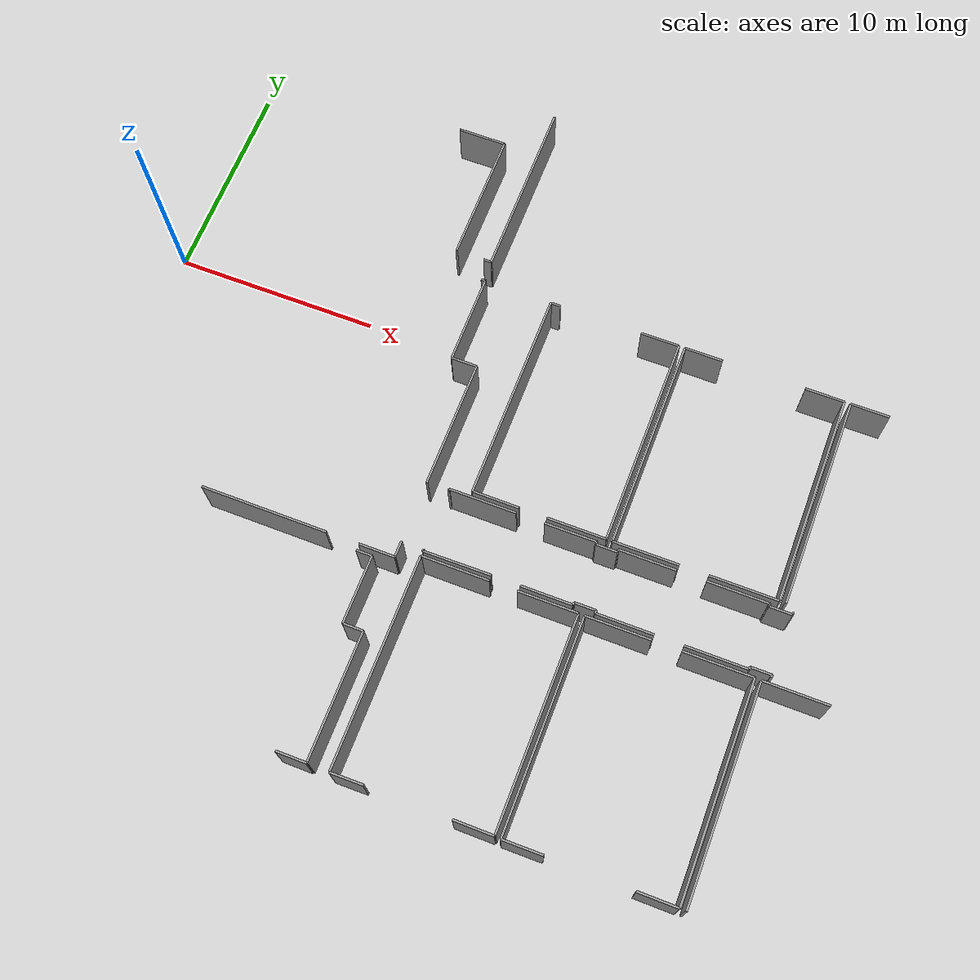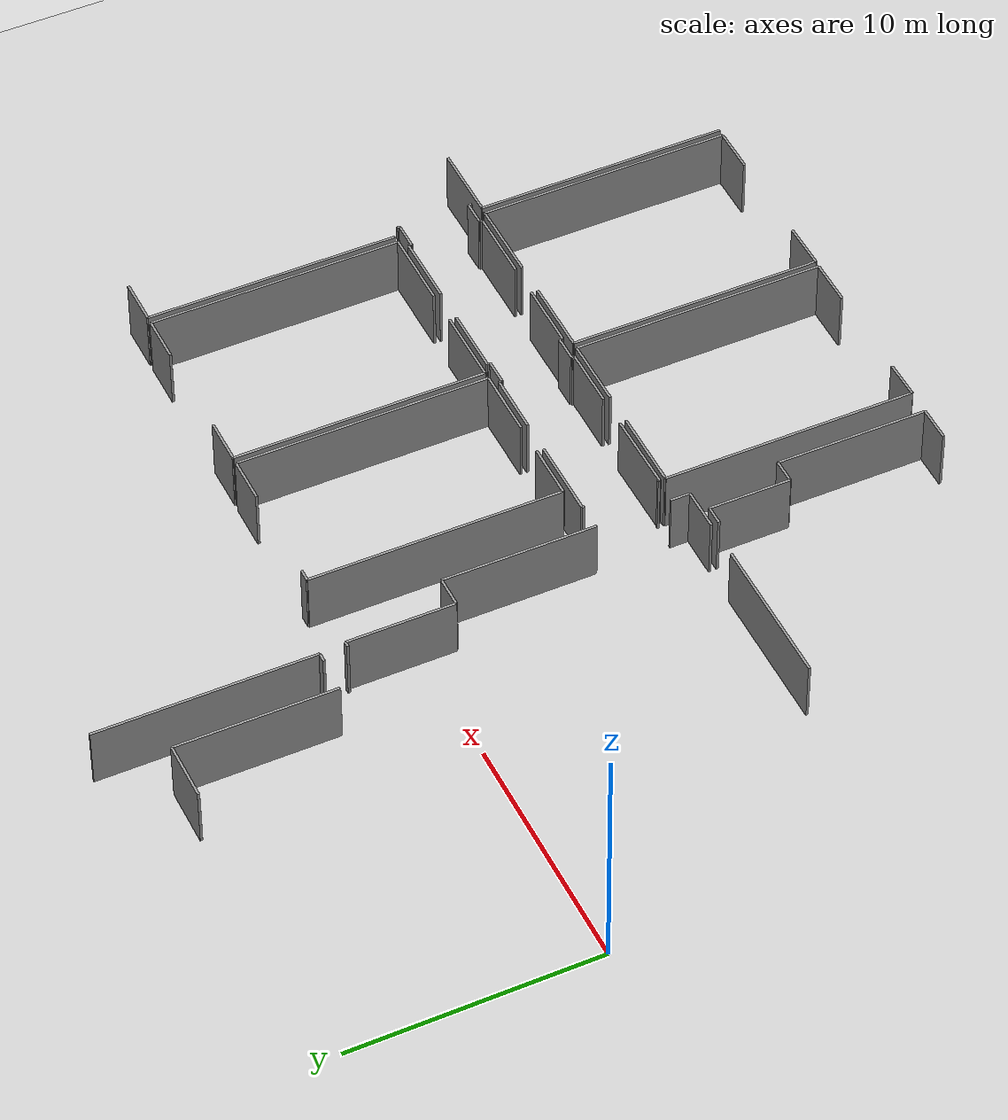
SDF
<sdf version="1.6">
 <world name="default">
  <model name="ground_plane">
   <static>1</static>
   <link name="link">
    <collision name="collision">
     <geometry><plane><normal>0 0 1</normal><size>100 100</size></plane></geometry>
     <surface><friction><ode><mu>100</mu><mu2>50</mu2></ode></friction></surface>
    </collision>
    <visual name="visual">
     <cast_shadows>0</cast_shadows>
     <geometry><plane><normal>0 0 1</normal><size>100 100</size></plane></geometry>
     <material>
      <script><uri>file://media/materials/scripts/gazebo.material</uri><name>Gazebo/Grey</name></script>
     </material>
    </visual>
   </link>
  </model>
  <model name="50057025">
   <static>1</static>
   <link name="Wall_98">
    <collision name="Wall_98_Collision">
     <geometry><box><size>0.759958303621 0.1 2.5</size></box></geometry>
     <pose>0.379979151811 0 1.25 0 0 0</pose>
    </collision>
    <visual name="Wall_98_Visual">
     <pose>0.379979151811 0 1.25 0 0 0</pose>
     <geometry><box><size>0.759958303621 0.1 2.5</size></box></geometry>
     <material>
      <script><uri>file://media/materials/scripts/gazebo.material</uri><name>Gazebo/Grey</name></script>
      <ambient>1 1 1 1</ambient>
     </material>
    </visual>
    <pose>70.1694833677 -32.3245731251 0 0 0 0.0</pose>
   </link>
   <link name="Wall_99">
    <collision name="Wall_99_Collision">
     <geometry><box><size>3.28504642712 0.1 2.5</size></box></geometry>
     <pose>1.64252321356 0 1.25 0 0 0</pose>
    </collision>
    <visual name="Wall_99_Visual">
     <pose>1.64252321356 0 1.25 0 0 0</pose>
     <geometry><box><size>3.28504642712 0.1 2.5</size></box></geometry>
     <material>
      <script><uri>file://media/materials/scripts/gazebo.material</uri><name>Gazebo/Grey</name></script>
      <ambient>1 1 1 1</ambient>
     </material>
    </visual>
    <pose>70.9294416713 -32.3245731251 0 0 0 -1.57079632679</pose>
   </link>
   <link name="Wall_100">
    <collision name="Wall_100_Collision">
     <geometry><box><size>0.97160669118 0.1 2.5</size></box></geometry>
     <pose>0.48580334559 0 1.25 0 0 0</pose>
    </collision>
    <visual name="Wall_100_Visual">
     <pose>0.48580334559 0 1.25 0 0 0</pose>
     <geometry><box><size>0.97160669118 0.1 2.5</size></box></geometry>
     <material>
      <script><uri>file://media/materials/scripts/gazebo.material</uri><name>Gazebo/Grey</name></script>
      <ambient>1 1 1 1</ambient>
     </material>
    </visual>
    <pose>70.9294416713 -35.6096195522 0 0 0 0.0</pose>
   </link>
   <link name="Wall_101">
    <collision name="Wall_101_Collision">
     <geometry><box><size>6.09119246324 0.1 2.5</size></box></geometry>
     <pose>3.04559623162 0 1.25 0 0 0</pose>
    </collision>
    <visual name="Wall_101_Visual">
     <pose>3.04559623162 0 1.25 0 0 0</pose>
     <geometry><box><size>6.09119246324 0.1 2.5</size></box></geometry>
     <material>
      <script><uri>file://media/materials/scripts/gazebo.material</uri><name>Gazebo/Grey</name></script>
      <ambient>1 1 1 1</ambient>
     </material>
    </visual>
    <pose>71.9010483625 -35.6096195522 0 0 0 -1.57079632679</pose>
   </link>
   <link name="Wall_102">
    <collision name="Wall_102_Collision">
     <geometry><box><size>1.44620065179 0.1 2.5</size></box></geometry>
     <pose>0.723100325895 0 1.25 0 0 0</pose>
    </collision>
    <visual name="Wall_102_Visual">
     <pose>0.723100325895 0 1.25 0 0 0</pose>
     <geometry><box><size>1.44620065179 0.1 2.5</size></box></geometry>
     <material>
      <script><uri>file://media/materials/scripts/gazebo.material</uri><name>Gazebo/Grey</name></script>
      <ambient>1 1 1 1</ambient>
     </material>
    </visual>
    <pose>71.9010483625 -41.7008120154 0 0 0 3.14159265359</pose>
   </link>
   <link name="Wall_104">
    <collision name="Wall_104_Collision">
     <geometry><box><size>10.1669755053 0.1 2.5</size></box></geometry>
     <pose>5.08348775264 0 1.25 0 0 0</pose>
    </collision>
    <visual name="Wall_104_Visual">
     <pose>5.08348775264 0 1.25 0 0 0</pose>
     <geometry><box><size>10.1669755053 0.1 2.5</size></box></geometry>
     <material>
      <script><uri>file://media/materials/scripts/gazebo.material</uri><name>Gazebo/Grey</name></script>
      <ambient>1 1 1 1</ambient>
     </material>
    </visual>
    <pose>72.9473842868 -41.7166444801 0 0 0 1.57079632679</pose>
   </link>
   <link name="Wall_105">
    <collision name="Wall_105_Collision">
     <geometry><box><size>3.26212101829 0.1 2.5</size></box></geometry>
     <pose>1.63106050915 0 1.25 0 0 0</pose>
    </collision>
    <visual name="Wall_105_Visual">
     <pose>1.63106050915 0 1.25 0 0 0</pose>
     <geometry><box><size>3.26212101829 0.1 2.5</size></box></geometry>
     <material>
      <script><uri>file://media/materials/scripts/gazebo.material</uri><name>Gazebo/Grey</name></script>
      <ambient>1 1 1 1</ambient>
     </material>
    </visual>
    <pose>72.9473842868 -31.5496689748 0 0 0 0.0</pose>
   </link>
   <link name="Wall_106">
    <collision name="Wall_106_Collision">
     <geometry><box><size>2.85491002727 0.1 2.5</size></box></geometry>
     <pose>1.42745501363 0 1.25 0 0 0</pose>
    </collision>
    <visual name="Wall_106_Visual">
     <pose>1.42745501363 0 1.25 0 0 0</pose>
     <geometry><box><size>2.85491002727 0.1 2.5</size></box></geometry>
     <material>
      <script><uri>file://media/materials/scripts/gazebo.material</uri><name>Gazebo/Grey</name></script>
      <ambient>1 1 1 1</ambient>
     </material>
    </visual>
    <pose>77.5210666775 -31.5496689748 0 0 0 0.0</pose>
   </link>
   <link name="Wall_107">
    <collision name="Wall_107_Collision">
     <geometry><box><size>10.1501297629 0.1 2.5</size></box></geometry>
     <pose>5.07506488144 0 1.25 0 0 0</pose>
    </collision>
    <visual name="Wall_107_Visual">
     <pose>5.07506488144 0 1.25 0 0 0</pose>
     <geometry><box><size>10.1501297629 0.1 2.5</size></box></geometry>
     <material>
      <script><uri>file://media/materials/scripts/gazebo.material</uri><name>Gazebo/Grey</name></script>
      <ambient>1 1 1 1</ambient>
     </material>
    </visual>
    <pose>80.3759767047 -31.5496689748 0 0 0 -1.57079632679</pose>
   </link>
   <link name="Wall_108">
    <collision name="Wall_108_Collision">
     <geometry><box><size>1.88469659298 0.1 2.5</size></box></geometry>
     <pose>0.94234829649 0 1.25 0 0 0</pose>
    </collision>
    <visual name="Wall_108_Visual">
     <pose>0.94234829649 0 1.25 0 0 0</pose>
     <geometry><box><size>1.88469659298 0.1 2.5</size></box></geometry>
     <material>
      <script><uri>file://media/materials/scripts/gazebo.material</uri><name>Gazebo/Grey</name></script>
      <ambient>1 1 1 1</ambient>
     </material>
    </visual>
    <pose>80.3759767047 -41.6997987377 0 0 0 3.14159265359</pose>
   </link>
   <link name="Wall_109">
    <collision name="Wall_109_Collision">
     <geometry><box><size>1.53964102371 0.1 2.5</size></box></geometry>
     <pose>0.769820511855 0 1.25 0 0 0</pose>
    </collision>
    <visual name="Wall_109_Visual">
     <pose>0.769820511855 0 1.25 0 0 0</pose>
     <geometry><box><size>1.53964102371 0.1 2.5</size></box></geometry>
     <material>
      <script><uri>file://media/materials/scripts/gazebo.material</uri><name>Gazebo/Grey</name></script>
      <ambient>1 1 1 1</ambient>
     </material>
    </visual>
    <pose>74.4869331503 -41.6997987377 0 0 0 -3.13065109107</pose>
   </link>
   <link name="Wall_110">
    <collision name="Wall_110_Collision">
     <geometry><box><size>10.1669755053 0.1 2.5</size></box></geometry>
     <pose>5.08348775264 0 1.25 0 0 0</pose>
    </collision>
    <visual name="Wall_110_Visual">
     <pose>5.08348775264 0 1.25 0 0 0</pose>
     <geometry><box><size>10.1669755053 0.1 2.5</size></box></geometry>
     <material>
      <script><uri>file://media/materials/scripts/gazebo.material</uri><name>Gazebo/Grey</name></script>
      <ambient>1 1 1 1</ambient>
     </material>
    </visual>
    <pose>80.6552613813 -41.7248773617 0 0 0 1.57079632679</pose>
   </link>
   <link name="Wall_111">
    <collision name="Wall_111_Collision">
     <geometry><box><size>3.09429689291 0.1 2.5</size></box></geometry>
     <pose>1.54714844646 0 1.25 0 0 0</pose>
    </collision>
    <visual name="Wall_111_Visual">
     <pose>1.54714844646 0 1.25 0 0 0</pose>
     <geometry><box><size>3.09429689291 0.1 2.5</size></box></geometry>
     <material>
      <script><uri>file://media/materials/scripts/gazebo.material</uri><name>Gazebo/Grey</name></script>
      <ambient>1 1 1 1</ambient>
     </material>
    </visual>
    <pose>80.6552613813 -31.5579018565 0 0 0 0.0</pose>
   </link>
   <link name="Wall_112">
    <collision name="Wall_112_Collision">
     <geometry><box><size>3.30417204443 0.1 2.5</size></box></geometry>
     <pose>1.65208602221 0 1.25 0 0 0</pose>
    </collision>
    <visual name="Wall_112_Visual">
     <pose>1.65208602221 0 1.25 0 0 0</pose>
     <geometry><box><size>3.30417204443 0.1 2.5</size></box></geometry>
     <material>
      <script><uri>file://media/materials/scripts/gazebo.material</uri><name>Gazebo/Grey</name></script>
      <ambient>1 1 1 1</ambient>
     </material>
    </visual>
    <pose>85.1273626787 -31.5579018565 0 0 0 0.0</pose>
   </link>
   <link name="Wall_113">
    <collision name="Wall_113_Collision">
     <geometry><box><size>10.1524096378 0.1 2.5</size></box></geometry>
     <pose>5.0762048189 0 1.25 0 0 0</pose>
    </collision>
    <visual name="Wall_113_Visual">
     <pose>5.0762048189 0 1.25 0 0 0</pose>
     <geometry><box><size>10.1524096378 0.1 2.5</size></box></geometry>
     <material>
      <script><uri>file://media/materials/scripts/gazebo.material</uri><name>Gazebo/Grey</name></script>
      <ambient>1 1 1 1</ambient>
     </material>
    </visual>
    <pose>88.4315347231 -31.5579018565 0 0 0 -1.57079632679</pose>
   </link>
   <link name="Wall_114">
    <collision name="Wall_114_Collision">
     <geometry><box><size>1.86759753115 0.1 2.5</size></box></geometry>
     <pose>0.933798765574 0 1.25 0 0 0</pose>
    </collision>
    <visual name="Wall_114_Visual">
     <pose>0.933798765574 0 1.25 0 0 0</pose>
     <geometry><box><size>1.86759753115 0.1 2.5</size></box></geometry>
     <material>
      <script><uri>file://media/materials/scripts/gazebo.material</uri><name>Gazebo/Grey</name></script>
      <ambient>1 1 1 1</ambient>
     </material>
    </visual>
    <pose>88.4315347231 -41.7103114942 0 0 0 3.14159265359</pose>
   </link>
   <link name="Wall_115">
    <collision name="Wall_115_Collision">
     <geometry><box><size>1.88627274951 0.1 2.5</size></box></geometry>
     <pose>0.943136374754 0 1.25 0 0 0</pose>
    </collision>
    <visual name="Wall_115_Visual">
     <pose>0.943136374754 0 1.25 0 0 0</pose>
     <geometry><box><size>1.88627274951 0.1 2.5</size></box></geometry>
     <material>
      <script><uri>file://media/materials/scripts/gazebo.material</uri><name>Gazebo/Grey</name></script>
      <ambient>1 1 1 1</ambient>
     </material>
    </visual>
    <pose>82.5414778909 -41.7103114942 0 0 0 -3.1338705401</pose>
   </link>
   <link name="Wall_116">
    <collision name="Wall_116_Collision">
     <geometry><box><size>10.1530429364 0.1 2.5</size></box></geometry>
     <pose>5.07652146819 0 1.25 0 0 0</pose>
    </collision>
    <visual name="Wall_116_Visual">
     <pose>5.07652146819 0 1.25 0 0 0</pose>
     <geometry><box><size>10.1530429364 0.1 2.5</size></box></geometry>
     <material>
      <script><uri>file://media/materials/scripts/gazebo.material</uri><name>Gazebo/Grey</name></script>
      <ambient>1 1 1 1</ambient>
     </material>
    </visual>
    <pose>88.7222187743 -41.7312103476 0 0 0 1.57079632679</pose>
   </link>
   <link name="Wall_117">
    <collision name="Wall_117_Collision">
     <geometry><box><size>3.10531628831 0.1 2.5</size></box></geometry>
     <pose>1.55265814416 0 1.25 0 0 0</pose>
    </collision>
    <visual name="Wall_117_Visual">
     <pose>1.55265814416 0 1.25 0 0 0</pose>
     <geometry><box><size>3.10531628831 0.1 2.5</size></box></geometry>
     <material>
      <script><uri>file://media/materials/scripts/gazebo.material</uri><name>Gazebo/Grey</name></script>
      <ambient>1 1 1 1</ambient>
     </material>
    </visual>
    <pose>88.7222187743 -31.5781674112 0 0 0 0.0</pose>
   </link>
   <link name="Wall_148">
    <collision name="Wall_148_Collision">
     <geometry><box><size>10.1606425194 0.1 2.5</size></box></geometry>
     <pose>5.08032125971 0 1.25 0 0 0</pose>
    </collision>
    <visual name="Wall_148_Visual">
     <pose>5.08032125971 0 1.25 0 0 0</pose>
     <geometry><box><size>10.1606425194 0.1 2.5</size></box></geometry>
     <material>
      <script><uri>file://media/materials/scripts/gazebo.material</uri><name>Gazebo/Grey</name></script>
      <ambient>1 1 1 1</ambient>
     </material>
    </visual>
    <pose>88.7138592329 -27.918208221 0 0 0 1.57079632679</pose>
   </link>
   <link name="Wall_149">
    <collision name="Wall_149_Collision">
     <geometry><box><size>1.8643043785 0.1 2.5</size></box></geometry>
     <pose>0.93215218925 0 1.25 0 0 0</pose>
    </collision>
    <visual name="Wall_149_Visual">
     <pose>0.93215218925 0 1.25 0 0 0</pose>
     <geometry><box><size>1.8643043785 0.1 2.5</size></box></geometry>
     <material>
      <script><uri>file://media/materials/scripts/gazebo.material</uri><name>Gazebo/Grey</name></script>
      <ambient>1 1 1 1</ambient>
     </material>
    </visual>
    <pose>88.7138592329 -17.7575657016 0 0 0 0.0</pose>
   </link>
   <link name="Wall_154">
    <collision name="Wall_154_Collision">
     <geometry><box><size>10.1631757138 0.1 2.5</size></box></geometry>
     <pose>5.08158785688 0 1.25 0 0 0</pose>
    </collision>
    <visual name="Wall_154_Visual">
     <pose>5.08158785688 0 1.25 0 0 0</pose>
     <geometry><box><size>10.1631757138 0.1 2.5</size></box></geometry>
     <material>
      <script><uri>file://media/materials/scripts/gazebo.material</uri><name>Gazebo/Grey</name></script>
      <ambient>1 1 1 1</ambient>
     </material>
    </visual>
    <pose>80.6609610686 -27.9207414153 0 0 0 1.57079632679</pose>
   </link>
   <link name="Wall_155">
    <collision name="Wall_155_Collision">
     <geometry><box><size>1.85176506649 0.1 2.5</size></box></geometry>
     <pose>0.925882533245 0 1.25 0 0 0</pose>
    </collision>
    <visual name="Wall_155_Visual">
     <pose>0.925882533245 0 1.25 0 0 0</pose>
     <geometry><box><size>1.85176506649 0.1 2.5</size></box></geometry>
     <material>
      <script><uri>file://media/materials/scripts/gazebo.material</uri><name>Gazebo/Grey</name></script>
      <ambient>1 1 1 1</ambient>
     </material>
    </visual>
    <pose>80.6609610686 -17.7575657016 0 0 0 0.0</pose>
   </link>
   <link name="Wall_156">
    <collision name="Wall_156_Collision">
     <geometry><box><size>1.87709700994 0.1 2.5</size></box></geometry>
     <pose>0.938548504972 0 1.25 0 0 0</pose>
    </collision>
    <visual name="Wall_156_Visual">
     <pose>0.938548504972 0 1.25 0 0 0</pose>
     <geometry><box><size>1.87709700994 0.1 2.5</size></box></geometry>
     <material>
      <script><uri>file://media/materials/scripts/gazebo.material</uri><name>Gazebo/Grey</name></script>
      <ambient>1 1 1 1</ambient>
     </material>
    </visual>
    <pose>86.5351854362 -17.7575657016 0 0 0 0.0</pose>
   </link>
   <link name="Wall_157">
    <collision name="Wall_157_Collision">
     <geometry><box><size>10.1548161724 0.1 2.5</size></box></geometry>
     <pose>5.07740808621 0 1.25 0 0 0</pose>
    </collision>
    <visual name="Wall_157_Visual">
     <pose>5.07740808621 0 1.25 0 0 0</pose>
     <geometry><box><size>10.1548161724 0.1 2.5</size></box></geometry>
     <material>
      <script><uri>file://media/materials/scripts/gazebo.material</uri><name>Gazebo/Grey</name></script>
      <ambient>1 1 1 1</ambient>
     </material>
    </visual>
    <pose>88.4122824461 -17.7575657016 0 0 0 -1.57079632679</pose>
   </link>
   <link name="Wall_158">
    <collision name="Wall_158_Collision">
     <geometry><box><size>3.25414145611 0.1 2.5</size></box></geometry>
     <pose>1.62707072805 0 1.25 0 0 0</pose>
    </collision>
    <visual name="Wall_158_Visual">
     <pose>1.62707072805 0 1.25 0 0 0</pose>
     <geometry><box><size>3.25414145611 0.1 2.5</size></box></geometry>
     <material>
      <script><uri>file://media/materials/scripts/gazebo.material</uri><name>Gazebo/Grey</name></script>
      <ambient>1 1 1 1</ambient>
     </material>
    </visual>
    <pose>88.4122824461 -27.912381874 0 0 0 3.14159265359</pose>
   </link>
   <link name="Wall_159">
    <collision name="Wall_159_Collision">
     <geometry><box><size>3.13129268901 0.1 2.5</size></box></geometry>
     <pose>1.56564634451 0 1.25 0 0 0</pose>
    </collision>
    <visual name="Wall_159_Visual">
     <pose>1.56564634451 0 1.25 0 0 0</pose>
     <geometry><box><size>3.13129268901 0.1 2.5</size></box></geometry>
     <material>
      <script><uri>file://media/materials/scripts/gazebo.material</uri><name>Gazebo/Grey</name></script>
      <ambient>1 1 1 1</ambient>
     </material>
    </visual>
    <pose>83.792242599 -27.912381874 0 0 0 -3.13892297301</pose>
   </link>
   <link name="Wall_160">
    <collision name="Wall_160_Collision">
     <geometry><box><size>10.1615291374 0.1 2.5</size></box></geometry>
     <pose>5.08076456872 0 1.25 0 0 0</pose>
    </collision>
    <visual name="Wall_160_Visual">
     <pose>5.08076456872 0 1.25 0 0 0</pose>
     <geometry><box><size>10.1615291374 0.1 2.5</size></box></geometry>
     <material>
      <script><uri>file://media/materials/scripts/gazebo.material</uri><name>Gazebo/Grey</name></script>
      <ambient>1 1 1 1</ambient>
     </material>
    </visual>
    <pose>73.9697815247 -27.9094687005 0 0 0 1.57079632679</pose>
   </link>
   <link name="Wall_161">
    <collision name="Wall_161_Collision">
     <geometry><box><size>0.488399869794 0.1 2.5</size></box></geometry>
     <pose>0.244199934897 0 1.25 0 0 0</pose>
    </collision>
    <visual name="Wall_161_Visual">
     <pose>0.244199934897 0 1.25 0 0 0</pose>
     <geometry><box><size>0.488399869794 0.1 2.5</size></box></geometry>
     <material>
      <script><uri>file://media/materials/scripts/gazebo.material</uri><name>Gazebo/Grey</name></script>
      <ambient>1 1 1 1</ambient>
     </material>
    </visual>
    <pose>73.9697815247 -17.747939563 0 0 0 0.0</pose>
   </link>
   <link name="Wall_162">
    <collision name="Wall_162_Collision">
     <geometry><box><size>1.87709700994 0.1 2.5</size></box></geometry>
     <pose>0.938548504972 0 1.25 0 0 0</pose>
    </collision>
    <visual name="Wall_162_Visual">
     <pose>0.938548504972 0 1.25 0 0 0</pose>
     <geometry><box><size>1.87709700994 0.1 2.5</size></box></geometry>
     <material>
      <script><uri>file://media/materials/scripts/gazebo.material</uri><name>Gazebo/Grey</name></script>
      <ambient>1 1 1 1</ambient>
     </material>
    </visual>
    <pose>78.490266834 -17.747939563 0 0 0 0.0</pose>
   </link>
   <link name="Wall_163">
    <collision name="Wall_163_Collision">
     <geometry><box><size>10.1702686579 0.1 2.5</size></box></geometry>
     <pose>5.08513432896 0 1.25 0 0 0</pose>
    </collision>
    <visual name="Wall_163_Visual">
     <pose>5.08513432896 0 1.25 0 0 0</pose>
     <geometry><box><size>10.1702686579 0.1 2.5</size></box></geometry>
     <material>
      <script><uri>file://media/materials/scripts/gazebo.material</uri><name>Gazebo/Grey</name></script>
      <ambient>1 1 1 1</ambient>
     </material>
    </visual>
    <pose>80.367363844 -17.747939563 0 0 0 -1.57079632679</pose>
   </link>
   <link name="Wall_164">
    <collision name="Wall_164_Collision">
     <geometry><box><size>2.82767818806 0.1 2.5</size></box></geometry>
     <pose>1.41383909403 0 1.25 0 0 0</pose>
    </collision>
    <visual name="Wall_164_Visual">
     <pose>1.41383909403 0 1.25 0 0 0</pose>
     <geometry><box><size>2.82767818806 0.1 2.5</size></box></geometry>
     <material>
      <script><uri>file://media/materials/scripts/gazebo.material</uri><name>Gazebo/Grey</name></script>
      <ambient>1 1 1 1</ambient>
     </material>
    </visual>
    <pose>80.367363844 -27.918208221 0 0 0 3.14159265359</pose>
   </link>
   <link name="Wall_165">
    <collision name="Wall_165_Collision">
     <geometry><box><size>2.25228004854 0.1 2.5</size></box></geometry>
     <pose>1.12614002427 0 1.25 0 0 0</pose>
    </collision>
    <visual name="Wall_165_Visual">
     <pose>1.12614002427 0 1.25 0 0 0</pose>
     <geometry><box><size>2.25228004854 0.1 2.5</size></box></geometry>
     <material>
      <script><uri>file://media/materials/scripts/gazebo.material</uri><name>Gazebo/Grey</name></script>
      <ambient>1 1 1 1</ambient>
     </material>
    </visual>
    <pose>76.2220446172 -27.918208221 0 0 0 3.13771234464</pose>
   </link>
   <link name="Wall_166">
    <collision name="Wall_166_Collision">
     <geometry><box><size>0.086255267461 0.1 2.5</size></box></geometry>
     <pose>0.0431276337305 0 1.25 0 0 0</pose>
    </collision>
    <visual name="Wall_166_Visual">
     <pose>0.0431276337305 0 1.25 0 0 0</pose>
     <geometry><box><size>0.086255267461 0.1 2.5</size></box></geometry>
     <material>
      <script><uri>file://media/materials/scripts/gazebo.material</uri><name>Gazebo/Grey</name></script>
      <ambient>1 1 1 1</ambient>
     </material>
    </visual>
    <pose>72.9546038907 -31.3190216297 0 0 0 1.57079632679</pose>
   </link>
   <link name="Wall_167">
    <collision name="Wall_167_Collision">
     <geometry><box><size>0.08815516322 0.1 2.5</size></box></geometry>
     <pose>0.04407758161 0 1.25 0 0 0</pose>
    </collision>
    <visual name="Wall_167_Visual">
     <pose>0.04407758161 0 1.25 0 0 0</pose>
     <geometry><box><size>0.08815516322 0.1 2.5</size></box></geometry>
     <material>
      <script><uri>file://media/materials/scripts/gazebo.material</uri><name>Gazebo/Grey</name></script>
      <ambient>1 1 1 1</ambient>
     </material>
    </visual>
    <pose>72.9546038907 -28.272095471 0 0 0 1.57079632679</pose>
   </link>
   <link name="Wall_168">
    <collision name="Wall_168_Collision">
     <geometry><box><size>3.23387590134 0.1 2.5</size></box></geometry>
     <pose>1.61693795067 0 1.25 0 0 0</pose>
    </collision>
    <visual name="Wall_168_Visual">
     <pose>1.61693795067 0 1.25 0 0 0</pose>
     <geometry><box><size>3.23387590134 0.1 2.5</size></box></geometry>
     <material>
      <script><uri>file://media/materials/scripts/gazebo.material</uri><name>Gazebo/Grey</name></script>
      <ambient>1 1 1 1</ambient>
     </material>
    </visual>
    <pose>72.9546038907 -28.1839403078 0 0 0 0.0</pose>
   </link>
   <link name="Wall_169">
    <collision name="Wall_169_Collision">
     <geometry><box><size>2.47138440338 0.1 2.5</size></box></geometry>
     <pose>1.23569220169 0 1.25 0 0 0</pose>
    </collision>
    <visual name="Wall_169_Visual">
     <pose>1.23569220169 0 1.25 0 0 0</pose>
     <geometry><box><size>2.47138440338 0.1 2.5</size></box></geometry>
     <material>
      <script><uri>file://media/materials/scripts/gazebo.material</uri><name>Gazebo/Grey</name></script>
      <ambient>1 1 1 1</ambient>
     </material>
    </visual>
    <pose>77.5377857602 -28.1839403078 0 0 0 0.0</pose>
   </link>
   <link name="Wall_170">
    <collision name="Wall_170_Collision">
     <geometry><box><size>0.12526646038 0.1 2.5</size></box></geometry>
     <pose>0.0626332301901 0 1.25 0 0 0</pose>
    </collision>
    <visual name="Wall_170_Visual">
     <pose>0.0626332301901 0 1.25 0 0 0</pose>
     <geometry><box><size>0.12526646038 0.1 2.5</size></box></geometry>
     <material>
      <script><uri>file://media/materials/scripts/gazebo.material</uri><name>Gazebo/Grey</name></script>
      <ambient>1 1 1 1</ambient>
     </material>
    </visual>
    <pose>80.0091701635 -28.1839403078 0 0 0 -1.57079632679</pose>
   </link>
   <link name="Wall_171">
    <collision name="Wall_171_Collision">
     <geometry><box><size>1.02113064063 0.1 2.5</size></box></geometry>
     <pose>0.510565320316 0 1.25 0 0 0</pose>
    </collision>
    <visual name="Wall_171_Visual">
     <pose>0.510565320316 0 1.25 0 0 0</pose>
     <geometry><box><size>1.02113064063 0.1 2.5</size></box></geometry>
     <material>
      <script><uri>file://media/materials/scripts/gazebo.material</uri><name>Gazebo/Grey</name></script>
      <ambient>1 1 1 1</ambient>
     </material>
    </visual>
    <pose>80.0091701635 -28.3092067682 0 0 0 0.0</pose>
   </link>
   <link name="Wall_172">
    <collision name="Wall_172_Collision">
     <geometry><box><size>0.123113245187 0.1 2.5</size></box></geometry>
     <pose>0.0615566225933 0 1.25 0 0 0</pose>
    </collision>
    <visual name="Wall_172_Visual">
     <pose>0.0615566225933 0 1.25 0 0 0</pose>
     <geometry><box><size>0.123113245187 0.1 2.5</size></box></geometry>
     <material>
      <script><uri>file://media/materials/scripts/gazebo.material</uri><name>Gazebo/Grey</name></script>
      <ambient>1 1 1 1</ambient>
     </material>
    </visual>
    <pose>81.0303008042 -28.3092067682 0 0 0 1.57079632679</pose>
   </link>
   <link name="Wall_173">
    <collision name="Wall_173_Collision">
     <geometry><box><size>2.73673651106 0.1 2.5</size></box></geometry>
     <pose>1.36836825553 0 1.25 0 0 0</pose>
    </collision>
    <visual name="Wall_173_Visual">
     <pose>1.36836825553 0 1.25 0 0 0</pose>
     <geometry><box><size>2.73673651106 0.1 2.5</size></box></geometry>
     <material>
      <script><uri>file://media/materials/scripts/gazebo.material</uri><name>Gazebo/Grey</name></script>
      <ambient>1 1 1 1</ambient>
     </material>
    </visual>
    <pose>81.0303008042 -28.186093523 0 0 0 0.0</pose>
   </link>
   <link name="Wall_174">
    <collision name="Wall_174_Collision">
     <geometry><box><size>2.90190078238 0.1 2.5</size></box></geometry>
     <pose>1.45095039119 0 1.25 0 0 0</pose>
    </collision>
    <visual name="Wall_174_Visual">
     <pose>1.45095039119 0 1.25 0 0 0</pose>
     <geometry><box><size>2.90190078238 0.1 2.5</size></box></geometry>
     <material>
      <script><uri>file://media/materials/scripts/gazebo.material</uri><name>Gazebo/Grey</name></script>
      <ambient>1 1 1 1</ambient>
     </material>
    </visual>
    <pose>85.146488296 -28.186093523 0 0 0 0.0</pose>
   </link>
   <link name="Wall_175">
    <collision name="Wall_175_Collision">
     <geometry><box><size>0.125646439532 0.1 2.5</size></box></geometry>
     <pose>0.062823219766 0 1.25 0 0 0</pose>
    </collision>
    <visual name="Wall_175_Visual">
     <pose>0.062823219766 0 1.25 0 0 0</pose>
     <geometry><box><size>0.125646439532 0.1 2.5</size></box></geometry>
     <material>
      <script><uri>file://media/materials/scripts/gazebo.material</uri><name>Gazebo/Grey</name></script>
      <ambient>1 1 1 1</ambient>
     </material>
    </visual>
    <pose>88.0483890784 -28.186093523 0 0 0 -1.57079632679</pose>
   </link>
   <link name="Wall_176">
    <collision name="Wall_176_Collision">
     <geometry><box><size>1.08218062436 0.1 2.5</size></box></geometry>
     <pose>0.541090312178 0 1.25 0 0 0</pose>
    </collision>
    <visual name="Wall_176_Visual">
     <pose>0.541090312178 0 1.25 0 0 0</pose>
     <geometry><box><size>1.08218062436 0.1 2.5</size></box></geometry>
     <material>
      <script><uri>file://media/materials/scripts/gazebo.material</uri><name>Gazebo/Grey</name></script>
      <ambient>1 1 1 1</ambient>
     </material>
    </visual>
    <pose>88.0483890784 -28.3117399625 0 0 0 0.0</pose>
   </link>
   <link name="Wall_177">
    <collision name="Wall_177_Collision">
     <geometry><box><size>0.114880363564 0.1 2.5</size></box></geometry>
     <pose>0.057440181782 0 1.25 0 0 0</pose>
    </collision>
    <visual name="Wall_177_Visual">
     <pose>0.057440181782 0 1.25 0 0 0</pose>
     <geometry><box><size>0.114880363564 0.1 2.5</size></box></geometry>
     <material>
      <script><uri>file://media/materials/scripts/gazebo.material</uri><name>Gazebo/Grey</name></script>
      <ambient>1 1 1 1</ambient>
     </material>
    </visual>
    <pose>89.1305697027 -28.3117399625 0 0 0 1.57079632679</pose>
   </link>
   <link name="Wall_207">
    <collision name="Wall_207_Collision">
     <geometry><box><size>0.126026418684 0.1 2.5</size></box></geometry>
     <pose>0.0630132093419 0 1.25 0 0 0</pose>
    </collision>
    <visual name="Wall_207_Visual">
     <pose>0.0630132093419 0 1.25 0 0 0</pose>
     <geometry><box><size>0.126026418684 0.1 2.5</size></box></geometry>
     <material>
      <script><uri>file://media/materials/scripts/gazebo.material</uri><name>Gazebo/Grey</name></script>
      <ambient>1 1 1 1</ambient>
     </material>
    </visual>
    <pose>89.0904185724 -31.3102821092 0 0 0 1.57079632679</pose>
   </link>
   <link name="Wall_208">
    <collision name="Wall_208_Collision">
     <geometry><box><size>1.00656477315 0.1 2.5</size></box></geometry>
     <pose>0.503282386573 0 1.25 0 0 0</pose>
    </collision>
    <visual name="Wall_208_Visual">
     <pose>0.503282386573 0 1.25 0 0 0</pose>
     <geometry><box><size>1.00656477315 0.1 2.5</size></box></geometry>
     <material>
      <script><uri>file://media/materials/scripts/gazebo.material</uri><name>Gazebo/Grey</name></script>
      <ambient>1 1 1 1</ambient>
     </material>
    </visual>
    <pose>89.0904185724 -31.1842556905 0 0 0 3.14159265359</pose>
   </link>
   <link name="Wall_209">
    <collision name="Wall_209_Collision">
     <geometry><box><size>0.115893641302 0.1 2.5</size></box></geometry>
     <pose>0.0579468206511 0 1.25 0 0 0</pose>
    </collision>
    <visual name="Wall_209_Visual">
     <pose>0.0579468206511 0 1.25 0 0 0</pose>
     <geometry><box><size>0.115893641302 0.1 2.5</size></box></geometry>
     <material>
      <script><uri>file://media/materials/scripts/gazebo.material</uri><name>Gazebo/Grey</name></script>
      <ambient>1 1 1 1</ambient>
     </material>
    </visual>
    <pose>88.0838537992 -31.1842556905 0 0 0 -1.57079632679</pose>
   </link>
   <link name="Wall_210">
    <collision name="Wall_210_Collision">
     <geometry><box><size>2.94597836399 0.1 2.5</size></box></geometry>
     <pose>1.47298918199 0 1.25 0 0 0</pose>
    </collision>
    <visual name="Wall_210_Visual">
     <pose>1.47298918199 0 1.25 0 0 0</pose>
     <geometry><box><size>2.94597836399 0.1 2.5</size></box></geometry>
     <material>
      <script><uri>file://media/materials/scripts/gazebo.material</uri><name>Gazebo/Grey</name></script>
      <ambient>1 1 1 1</ambient>
     </material>
    </visual>
    <pose>88.0838537992 -31.3001493318 0 0 0 3.14159265359</pose>
   </link>
   <link name="Wall_211">
    <collision name="Wall_211_Collision">
     <geometry><box><size>2.72673039339 0.1 2.5</size></box></geometry>
     <pose>1.3633651967 0 1.25 0 0 0</pose>
    </collision>
    <visual name="Wall_211_Visual">
     <pose>1.3633651967 0 1.25 0 0 0</pose>
     <geometry><box><size>2.72673039339 0.1 2.5</size></box></geometry>
     <material>
      <script><uri>file://media/materials/scripts/gazebo.material</uri><name>Gazebo/Grey</name></script>
      <ambient>1 1 1 1</ambient>
     </material>
    </visual>
    <pose>83.7733703011 -31.3001493318 0 0 0 3.14159265359</pose>
   </link>
   <link name="Wall_212">
    <collision name="Wall_212_Collision">
     <geometry><box><size>0.131346126809 0.1 2.5</size></box></geometry>
     <pose>0.0656730634046 0 1.25 0 0 0</pose>
    </collision>
    <visual name="Wall_212_Visual">
     <pose>0.0656730634046 0 1.25 0 0 0</pose>
     <geometry><box><size>0.131346126809 0.1 2.5</size></box></geometry>
     <material>
      <script><uri>file://media/materials/scripts/gazebo.material</uri><name>Gazebo/Grey</name></script>
      <ambient>1 1 1 1</ambient>
     </material>
    </visual>
    <pose>81.0466399077 -31.3001493318 0 0 0 1.57079632679</pose>
   </link>
   <link name="Wall_213">
    <collision name="Wall_213_Collision">
     <geometry><box><size>1.03278333462 0.1 2.5</size></box></geometry>
     <pose>0.516391667311 0 1.25 0 0 0</pose>
    </collision>
    <visual name="Wall_213_Visual">
     <pose>0.516391667311 0 1.25 0 0 0</pose>
     <geometry><box><size>1.03278333462 0.1 2.5</size></box></geometry>
     <material>
      <script><uri>file://media/materials/scripts/gazebo.material</uri><name>Gazebo/Grey</name></script>
      <ambient>1 1 1 1</ambient>
     </material>
    </visual>
    <pose>81.0466399077 -31.168803205 0 0 0 3.14159265359</pose>
   </link>
   <link name="Wall_214">
    <collision name="Wall_214_Collision">
     <geometry><box><size>0.11969343282 0.1 2.5</size></box></geometry>
     <pose>0.0598467164102 0 1.25 0 0 0</pose>
    </collision>
    <visual name="Wall_214_Visual">
     <pose>0.0598467164102 0 1.25 0 0 0</pose>
     <geometry><box><size>0.11969343282 0.1 2.5</size></box></geometry>
     <material>
      <script><uri>file://media/materials/scripts/gazebo.material</uri><name>Gazebo/Grey</name></script>
      <ambient>1 1 1 1</ambient>
     </material>
    </visual>
    <pose>80.0138565731 -31.168803205 0 0 0 -1.57079632679</pose>
   </link>
   <link name="Wall_215">
    <collision name="Wall_215_Collision">
     <geometry><box><size>2.45947838995 0.1 2.5</size></box></geometry>
     <pose>1.22973919498 0 1.25 0 0 0</pose>
    </collision>
    <visual name="Wall_215_Visual">
     <pose>1.22973919498 0 1.25 0 0 0</pose>
     <geometry><box><size>2.45947838995 0.1 2.5</size></box></geometry>
     <material>
      <script><uri>file://media/materials/scripts/gazebo.material</uri><name>Gazebo/Grey</name></script>
      <ambient>1 1 1 1</ambient>
     </material>
    </visual>
    <pose>80.0138565731 -31.2884966378 0 0 0 3.14159265359</pose>
   </link>
   <link name="Wall_216">
    <collision name="Wall_216_Collision">
     <geometry><box><size>3.23072695709 0.1 2.5</size></box></geometry>
     <pose>1.61536347855 0 1.25 0 0 0</pose>
    </collision>
    <visual name="Wall_216_Visual">
     <pose>1.61536347855 0 1.25 0 0 0</pose>
     <geometry><box><size>3.23072695709 0.1 2.5</size></box></geometry>
     <material>
      <script><uri>file://media/materials/scripts/gazebo.material</uri><name>Gazebo/Grey</name></script>
      <ambient>1 1 1 1</ambient>
     </material>
    </visual>
    <pose>76.1851866394 -31.2884966378 0 0 0 -3.13214417761</pose>
   </link>
   <link name="Wall_230">
    <collision name="Wall_230_Collision">
     <geometry><box><size>0.213548283318 0.1 2.5</size></box></geometry>
     <pose>0.106774141659 0 1.25 0 0 0</pose>
    </collision>
    <visual name="Wall_230_Visual">
     <pose>0.106774141659 0 1.25 0 0 0</pose>
     <geometry><box><size>0.213548283318 0.1 2.5</size></box></geometry>
     <material>
      <script><uri>file://media/materials/scripts/gazebo.material</uri><name>Gazebo/Grey</name></script>
      <ambient>1 1 1 1</ambient>
     </material>
    </visual>
    <pose>70.4278691909 -17.7507260768 0 0 0 0.0</pose>
   </link>
   <link name="Wall_231">
    <collision name="Wall_231_Collision">
     <geometry><box><size>4.33062239318 0.1 2.5</size></box></geometry>
     <pose>2.16531119659 0 1.25 0 0 0</pose>
    </collision>
    <visual name="Wall_231_Visual">
     <pose>2.16531119659 0 1.25 0 0 0</pose>
     <geometry><box><size>4.33062239318 0.1 2.5</size></box></geometry>
     <material>
      <script><uri>file://media/materials/scripts/gazebo.material</uri><name>Gazebo/Grey</name></script>
      <ambient>1 1 1 1</ambient>
     </material>
    </visual>
    <pose>70.6414174742 -17.7507260768 0 0 0 -1.57079632679</pose>
   </link>
   <link name="Wall_232">
    <collision name="Wall_232_Collision">
     <geometry><box><size>1.2497514303 0.1 2.5</size></box></geometry>
     <pose>0.624875715152 0 1.25 0 0 0</pose>
    </collision>
    <visual name="Wall_232_Visual">
     <pose>0.624875715152 0 1.25 0 0 0</pose>
     <geometry><box><size>1.2497514303 0.1 2.5</size></box></geometry>
     <material>
      <script><uri>file://media/materials/scripts/gazebo.material</uri><name>Gazebo/Grey</name></script>
      <ambient>1 1 1 1</ambient>
     </material>
    </visual>
    <pose>70.6414174742 -22.08134847 0 0 0 0.0</pose>
   </link>
   <link name="Wall_233">
    <collision name="Wall_233_Collision">
     <geometry><box><size>6.17960094589 0.1 2.5</size></box></geometry>
     <pose>3.08980047295 0 1.25 0 0 0</pose>
    </collision>
    <visual name="Wall_233_Visual">
     <pose>3.08980047295 0 1.25 0 0 0</pose>
     <geometry><box><size>6.17960094589 0.1 2.5</size></box></geometry>
     <material>
      <script><uri>file://media/materials/scripts/gazebo.material</uri><name>Gazebo/Grey</name></script>
      <ambient>1 1 1 1</ambient>
     </material>
    </visual>
    <pose>71.8911689045 -22.08134847 0 0 0 -1.57079632679</pose>
   </link>
   <link name="Wall_234">
    <collision name="Wall_234_Collision">
     <geometry><box><size>0.786556844248 0.1 2.5</size></box></geometry>
     <pose>0.393278422124 0 1.25 0 0 0</pose>
    </collision>
    <visual name="Wall_234_Visual">
     <pose>0.393278422124 0 1.25 0 0 0</pose>
     <geometry><box><size>0.786556844248 0.1 2.5</size></box></geometry>
     <material>
      <script><uri>file://media/materials/scripts/gazebo.material</uri><name>Gazebo/Grey</name></script>
      <ambient>1 1 1 1</ambient>
     </material>
    </visual>
    <pose>71.8911689045 -31.2292198901 0 0 0 -1.57079632679</pose>
   </link>
   <link name="Wall_235">
    <collision name="Wall_235_Collision">
     <geometry><box><size>1.72852516159 0.1 2.5</size></box></geometry>
     <pose>0.864262580793 0 1.25 0 0 0</pose>
    </collision>
    <visual name="Wall_235_Visual">
     <pose>0.864262580793 0 1.25 0 0 0</pose>
     <geometry><box><size>1.72852516159 0.1 2.5</size></box></geometry>
     <material>
      <script><uri>file://media/materials/scripts/gazebo.material</uri><name>Gazebo/Grey</name></script>
      <ambient>1 1 1 1</ambient>
     </material>
    </visual>
    <pose>71.8911689045 -32.0157767344 0 0 0 3.14159265359</pose>
   </link>
   <link name="Wall_236">
    <collision name="Wall_236_Collision">
     <geometry><box><size>6.10259183779 0.1 2.5</size></box></geometry>
     <pose>3.0512959189 0 1.25 0 0 0</pose>
    </collision>
    <visual name="Wall_236_Visual">
     <pose>3.0512959189 0 1.25 0 0 0</pose>
     <geometry><box><size>6.10259183779 0.1 2.5</size></box></geometry>
     <material>
      <script><uri>file://media/materials/scripts/gazebo.material</uri><name>Gazebo/Grey</name></script>
      <ambient>1 1 1 1</ambient>
     </material>
    </visual>
    <pose>68.58256377 -32.0157767344 0 0 0 3.14159265359</pose>
   </link>
   <link name="Wall_307">
    <collision name="Wall_307_Collision">
     <geometry><box><size>8.7832180941 0.1 2.5</size></box></geometry>
     <pose>4.39160904705 0 1.25 0 0 0</pose>
    </collision>
    <visual name="Wall_307_Visual">
     <pose>4.39160904705 0 1.25 0 0 0</pose>
     <geometry><box><size>8.7832180941 0.1 2.5</size></box></geometry>
     <material>
      <script><uri>file://media/materials/scripts/gazebo.material</uri><name>Gazebo/Grey</name></script>
      <ambient>1 1 1 1</ambient>
     </material>
    </visual>
    <pose>70.5294502842 -7.92383191242 0 0 0 -1.57079632679</pose>
   </link>
   <link name="Wall_308">
    <collision name="Wall_308_Collision">
     <geometry><box><size>0.378712554638 0.1 2.5</size></box></geometry>
     <pose>0.189356277319 0 1.25 0 0 0</pose>
    </collision>
    <visual name="Wall_308_Visual">
     <pose>0.189356277319 0 1.25 0 0 0</pose>
     <geometry><box><size>0.378712554638 0.1 2.5</size></box></geometry>
     <material>
      <script><uri>file://media/materials/scripts/gazebo.material</uri><name>Gazebo/Grey</name></script>
      <ambient>1 1 1 1</ambient>
     </material>
    </visual>
    <pose>70.5294502842 -16.7070500065 0 0 0 3.14159265359</pose>
   </link>
   <link name="Wall_309">
    <collision name="Wall_309_Collision">
     <geometry><box><size>6.42354756136 0.1 2.5</size></box></geometry>
     <pose>3.21177378068 0 1.25 0 0 0</pose>
    </collision>
    <visual name="Wall_309_Visual">
     <pose>3.21177378068 0 1.25 0 0 0</pose>
     <geometry><box><size>6.42354756136 0.1 2.5</size></box></geometry>
     <material>
      <script><uri>file://media/materials/scripts/gazebo.material</uri><name>Gazebo/Grey</name></script>
      <ambient>1 1 1 1</ambient>
     </material>
    </visual>
    <pose>68.7487413191 -16.7070500065 0 0 0 1.57079632679</pose>
   </link>
   <link name="Wall_310">
    <collision name="Wall_310_Collision">
     <geometry><box><size>2.37056326843 0.1 2.5</size></box></geometry>
     <pose>1.18528163421 0 1.25 0 0 0</pose>
    </collision>
    <visual name="Wall_310_Visual">
     <pose>1.18528163421 0 1.25 0 0 0</pose>
     <geometry><box><size>2.37056326843 0.1 2.5</size></box></geometry>
     <material>
      <script><uri>file://media/materials/scripts/gazebo.material</uri><name>Gazebo/Grey</name></script>
      <ambient>1 1 1 1</ambient>
     </material>
    </visual>
    <pose>68.7487413191 -10.2835024452 0 0 0 3.14159265359</pose>
   </link>
   <pose>-55.75 20.8575555688 0 0 0 0</pose>
  </model>
 </world>
</sdf>
